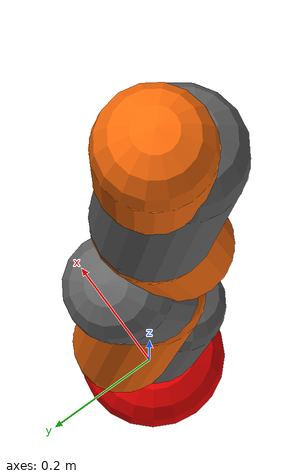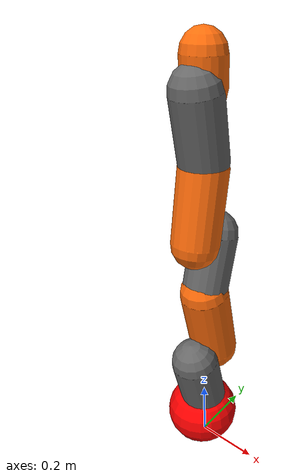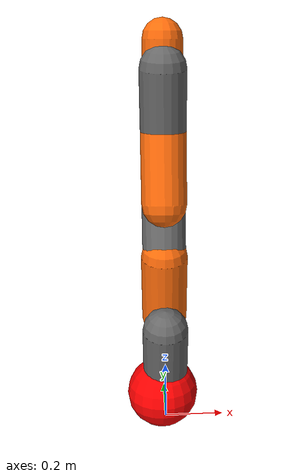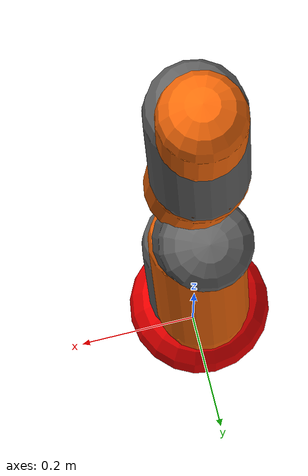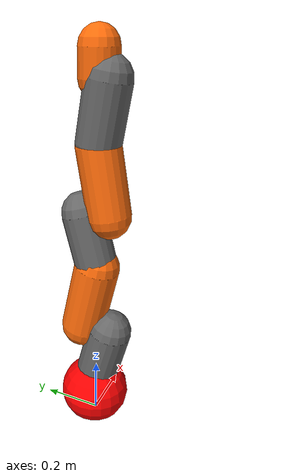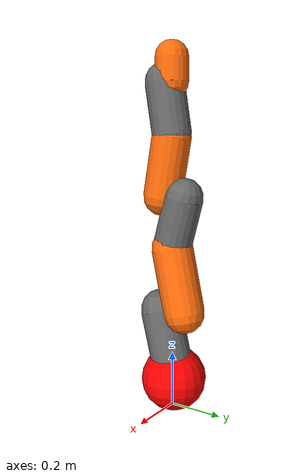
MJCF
<mujoco model="iiwa">

    <compiler angle="radian" autolimits="true"/>

    <!-- Physical limits of the actuator. -->
    <!-- Values taken from kuka_lbr_iiwa_brochure_en.pdf (see website) -->
    <actuator>
        <motor ctrllimited="true" ctrlrange="-176.0 176.0" joint="joint_1" name="torq_j1"/>
        <motor ctrllimited="true" ctrlrange="-176.0 176.0" joint="joint_2" name="torq_j2"/>
        <motor ctrllimited="true" ctrlrange="-110.0 110.0" joint="joint_3" name="torq_j3"/>
        <motor ctrllimited="true" ctrlrange="-110.0 110.0" joint="joint_4" name="torq_j4"/>
        <motor ctrllimited="true" ctrlrange="-110.0 110.0" joint="joint_5" name="torq_j5"/>
        <motor ctrllimited="true" ctrlrange="-40.0 40.0" joint="joint_6" name="torq_j6"/>
        <motor ctrllimited="true" ctrlrange="-40.0 40.0" joint="joint_7" name="torq_j7"/>
    </actuator>
    <asset>
    </asset>
    <worldbody>

        <body name="base" pos="0 0 0">
            <camera mode="fixed" name="robotview" pos="1.0 0 0.4" quat="0.653 0.271 0.271 0.653"/>
            <inertial diaginertia="0 0 0" mass="0" pos="0 0 0"/>
            <geom name="col_sockel" pos="-0.01 0 0.10" group="2" type="sphere" size="0.12" contype="0" conaffinity="0" density="0" rgba="1 0 0 1"/>

            <body name="iiwa_link_1" pos="0 0 0.1575">
                <inertial pos="0 -0.01439 0.102503" quat="1 0 0 0" mass="6.495" diaginertia="0.0690761441316632 0.0711085586914514 0.0200625854402119"/>
                <joint name="joint_1" pos="0 0 0" axis="0 0 1" limited="true" range="-2.9670597283903604 2.9670597283903604" />
                <!-- Red collision sphere for link_1 -->
                <geom  name="col_joint1" quat="0 0 0 1" type="capsule" group="2" fromto="0 0 0 0 -0.05 0.2025" size="0.075" contype="1" conaffinity="1" density="0" rgba="0.4 0.4 0.4 1"/>

                <body name="iiwa_link_2" pos="0 0 0.2025" quat="0 0 0.707107 0.707107">
                    <inertial pos="1.2e-05 0.06472 0.004804" quat="1 0 0 0" mass="8.807" diaginertia="0.0824701683534692 0.0164110968055191 0.0873510892661361"/>
                    <joint name="joint_2" pos="0 0 0" axis="0 0 1" limited="true" range="-2.0943951023931953 2.0943951023931953"/>
                    <!-- Red collision capsule for link_2 -->
                    <geom  name="col_joint2" quat="0 0 0 1" type="capsule" group="2" fromto="0.0 0 0.0513 0 0.2375 0" size="0.075" contype="1" conaffinity="1" density="0" rgba="1 0.423529 0.0392157 1"/>

                    <body name="iiwa_link_3" pos="0 0.2375 0" quat="0 0 0.707107 0.707107">
                        <inertial pos="-0.000208 0.01601 0.087283" quat="1 0 0 0" mass="2.8" diaginertia="0.0230152941318817 0.0228661554143474 0.0454482283748983"/>
                        <joint name="joint_3" pos="0 0 0" axis="0 0 1" limited="true" range="-2.9670597283903604 2.9670597283903604"/>
                        <!-- Red collision sphere for link_3 -->
                        <geom name="col_joint3" quat="0 0 0 1" type="capsule" group="2" fromto="0 0 0 0. 0.05 0.1825" size="0.07" contype="1" conaffinity="1" density="0" rgba="0.4 0.4 0.4 1"/>

                        <body name="iiwa_link_4" pos="0 0 0.1825" quat="0.707107 0.707107 0 0">
                            <inertial pos="-0.000203 0.098639 0.011478" quat="1 0 0 0" mass="5.283" diaginertia="0.0472789668341968 0.00964726804146909 0.0466529007761679"/>
                            <joint name="joint_4" pos="0 0 0" axis="0 0 1" limited="true" range="-2.0943951023931953 2.0943951023931953"/>
                            <!-- Red collision capsule for link_4 -->
                            <geom  name="col_joint4" quat="0 0 0 1" type="capsule" group="2" fromto="0 0 0.04 0. 0.2175 0" size="0.07" contype="1" conaffinity="1" density="0" rgba="1 0.423529 0.0392157 1"/>

                            <body name="iiwa_link_5" pos="0 0.2175 0" quat="0 0 0.707107 0.707107">
                                <inertial pos="5.7e-05 0.014468 0.062938" mass="1.889" diaginertia="0.0138359953358589 0.0116859337751969 0.00571863785412578"/>
                                <joint name="joint_5" pos="0 0 0" axis="0 0 1" limited="true" range="-2.9670597283903604 2.9670597283903604"/>
                                <!-- Red collision sphere for link_5 -->
                                 <geom  name="col_joint5" quat="0 0 0 1" type="capsule" group="2" fromto="0 0 0 0 0.03 0.1825" size="0.07" contype="1" conaffinity="1" density="0" rgba="0.4 0.4 0.4 1"/>

                                <body name="iiwa_link_6" pos="0 0 0.1825" quat="0.707107 0.707107 0 0">
                                    <inertial pos="0.000363 0.016982 -0.019731" quat="1 0 0 0" mass="2.32" diaginertia="0.00732758787216765 0.00477633755783711 0.00606797638550296"/>
                                    <joint name="joint_6" pos="0 0 0" axis="0 0 1" limited="true" range="-2.0943951023931953 2.0943951023931953"/>
                                    <!-- Red collision capsule for link_6 -->
                                    <geom name="col_joint67" quat="0 0 0 1" type="capsule" group="2" fromto="0 0 0 0 0.081 0." size="0.06" contype="1" conaffinity="1" density="0" rgba="1 0.423529 0.0392157 1"/>

                                    <body name="iiwa_link_7" pos="0 0.081 0" quat="0 0 0.707107 0.707107">
                                        <inertial pos="0.001904 -9.3e-05 0.018862" quat="1 0 0 0" mass="0.863" diaginertia="0.000884 0.000888 0.001105"/>
                                        <joint name="joint_7" pos="0 0 0" axis="0 0 1" limited="true" range="-3.0543261909900767 3.0543261909900767"/>
                                        <!--site name="gripper_attachment" pos="0 0 0.071" size="0.01" rgba="1 0 0 1" group="0"/-->
                                        <body name="iiwa_link_e" pos="0 0 0.071"/>
                                    </body>
                                </body>
                            </body>
                        </body>
                    </body>
                </body>
            </body>
        </body>
    </worldbody>
</mujoco>
